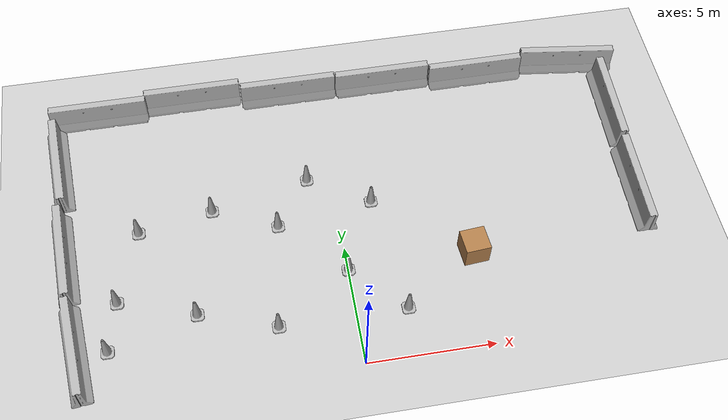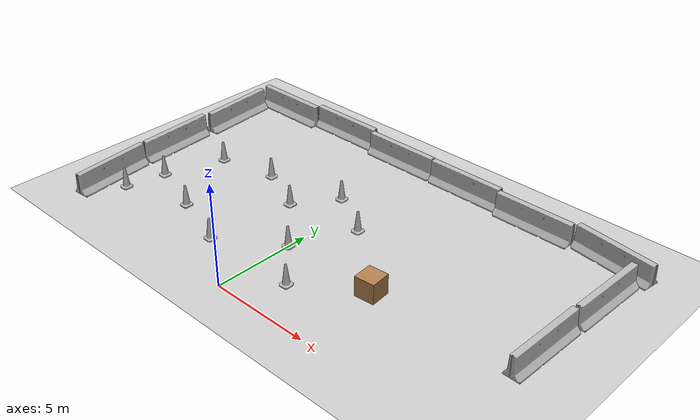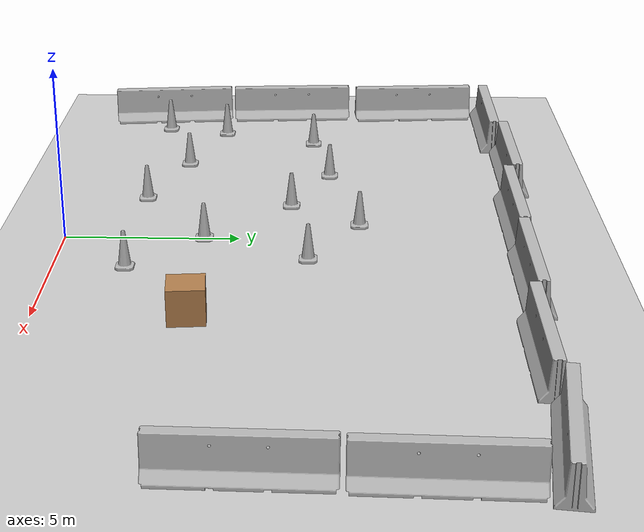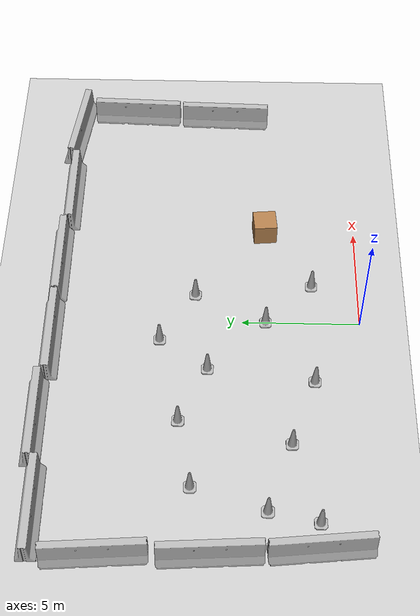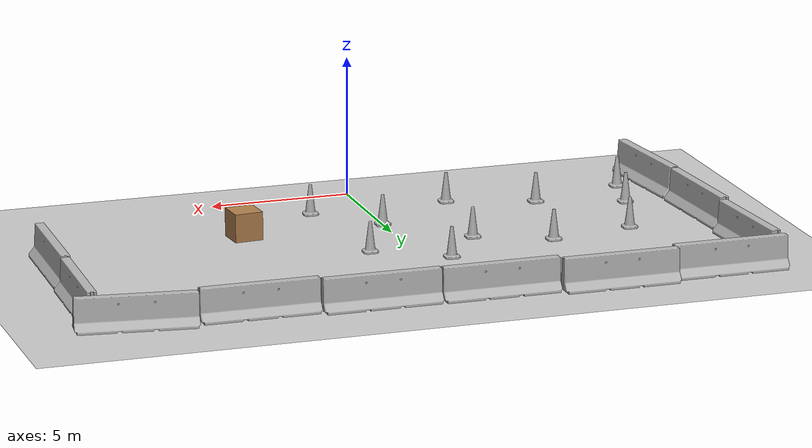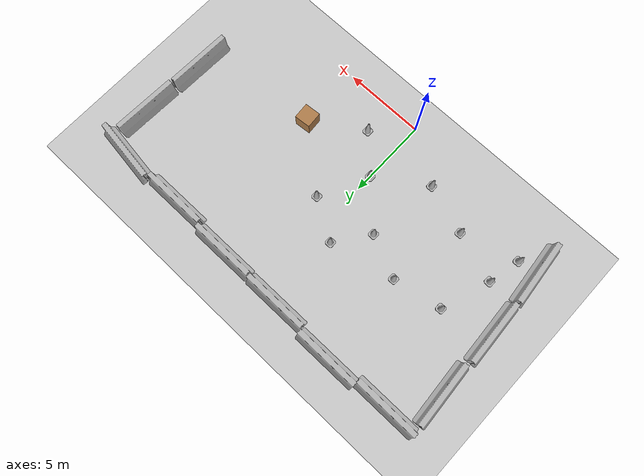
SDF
<sdf version="1.4">
 <world name="default">
  <model name="ground_plane">
   <static>1</static>
   <link name="link">
    <collision name="collision">
     <geometry><plane><normal>0 0 1</normal><size>100 100</size></plane></geometry>
     <surface><friction><ode><mu>100</mu><mu2>50</mu2></ode></friction></surface>
    </collision>
    <visual name="visual">
     <cast_shadows>0</cast_shadows>
     <geometry><plane><normal>0 0 1</normal><size>100 100</size></plane></geometry>
     <material>
      <script><uri>file://media/materials/scripts/gazebo.material</uri><name>Gazebo/Grey</name></script>
     </material>
    </visual>
    <velocity_decay><linear>0</linear><angular>0</angular></velocity_decay>
   </link>
  </model>
  <model name="unit_box_1">
   <pose>5 4 0.5 0 -0 0.083754</pose>
   <link name="link">
    <inertial>
     <mass>1</mass>
     <inertia><ixx>1</ixx><ixy>0</ixy><ixz>0</ixz><iyy>1</iyy><iyz>0</iyz><izz>1</izz></inertia>
    </inertial>
    <collision name="collision"><geometry><box><size>1 1 1</size></box></geometry></collision>
    <visual name="visual">
     <geometry><box><size>1 1 1</size></box></geometry>
     <material>
      <script><uri>file://media/materials/scripts/gazebo.material</uri><name>Gazebo/Wood</name></script>
     </material>
    </visual>
    <velocity_decay><linear>0</linear><angular>0</angular></velocity_decay>
   </link>
   <static>0</static>
  </model>
  <model name="jersey_barrier_5">
   <static>1</static>
   <link name="link">
    <visual name="visual">
     <geometry><mesh><uri>model://jersey_barrier/meshes/jersey_barrier.dae</uri></mesh></geometry>
    </visual>
    <collision name="upright">
     <pose>0 0 0.5715 0 -0 0</pose>
     <geometry><box><size>4.06542 0.3063 1.143</size></box></geometry>
    </collision>
    <collision name="base">
     <pose>0 0 0.032258 0 -0 0</pose>
     <geometry><box><size>4.06542 0.8107 0.064516</size></box></geometry>
    </collision>
    <collision name="base2">
     <pose>0 0 0.1 0 -0 0</pose>
     <geometry><box><size>4.06542 0.65 0.1</size></box></geometry>
    </collision>
    <collision name="base3">
     <pose>0 0 0.2 0 -0 0</pose>
     <geometry><box><size>4.06542 0.5 0.1</size></box></geometry>
    </collision>
    <collision name="left-angle">
     <pose>0 -0.224 0.2401 0.9 -0 0</pose>
     <geometry><box><size>4.06542 0.5 0.064516</size></box></geometry>
    </collision>
    <collision name="right-angle">
     <pose>0 0.224 0.2401 -0.9 0 0</pose>
     <geometry><box><size>4.06542 0.5 0.064516</size></box></geometry>
    </collision>
    <velocity_decay><linear>0</linear><angular>0</angular></velocity_decay>
   </link>
   <pose>-9.25889 13.0001 0 0 -0 0</pose>
  </model>
  <model name="jersey_barrier_6">
   <static>1</static>
   <link name="link">
    <visual name="visual">
     <geometry><mesh><uri>model://jersey_barrier/meshes/jersey_barrier.dae</uri></mesh></geometry>
    </visual>
    <collision name="upright">
     <pose>0 0 0.5715 0 -0 0</pose>
     <geometry><box><size>4.06542 0.3063 1.143</size></box></geometry>
    </collision>
    <collision name="base">
     <pose>0 0 0.032258 0 -0 0</pose>
     <geometry><box><size>4.06542 0.8107 0.064516</size></box></geometry>
    </collision>
    <collision name="base2">
     <pose>0 0 0.1 0 -0 0</pose>
     <geometry><box><size>4.06542 0.65 0.1</size></box></geometry>
    </collision>
    <collision name="base3">
     <pose>0 0 0.2 0 -0 0</pose>
     <geometry><box><size>4.06542 0.5 0.1</size></box></geometry>
    </collision>
    <collision name="left-angle">
     <pose>0 -0.224 0.2401 0.9 -0 0</pose>
     <geometry><box><size>4.06542 0.5 0.064516</size></box></geometry>
    </collision>
    <collision name="right-angle">
     <pose>0 0.224 0.2401 -0.9 0 0</pose>
     <geometry><box><size>4.06542 0.5 0.064516</size></box></geometry>
    </collision>
    <velocity_decay><linear>0</linear><angular>0</angular></velocity_decay>
   </link>
   <pose>-5.24766 13.2823 0 0 -0 0</pose>
  </model>
  <model name="jersey_barrier_7">
   <static>1</static>
   <link name="link">
    <visual name="visual">
     <geometry><mesh><uri>model://jersey_barrier/meshes/jersey_barrier.dae</uri></mesh></geometry>
    </visual>
    <collision name="upright">
     <pose>0 0 0.5715 0 -0 0</pose>
     <geometry><box><size>4.06542 0.3063 1.143</size></box></geometry>
    </collision>
    <collision name="base">
     <pose>0 0 0.032258 0 -0 0</pose>
     <geometry><box><size>4.06542 0.8107 0.064516</size></box></geometry>
    </collision>
    <collision name="base2">
     <pose>0 0 0.1 0 -0 0</pose>
     <geometry><box><size>4.06542 0.65 0.1</size></box></geometry>
    </collision>
    <collision name="base3">
     <pose>0 0 0.2 0 -0 0</pose>
     <geometry><box><size>4.06542 0.5 0.1</size></box></geometry>
    </collision>
    <collision name="left-angle">
     <pose>0 -0.224 0.2401 0.9 -0 0</pose>
     <geometry><box><size>4.06542 0.5 0.064516</size></box></geometry>
    </collision>
    <collision name="right-angle">
     <pose>0 0.224 0.2401 -0.9 0 0</pose>
     <geometry><box><size>4.06542 0.5 0.064516</size></box></geometry>
    </collision>
    <velocity_decay><linear>0</linear><angular>0</angular></velocity_decay>
   </link>
   <pose>-1.1439 12.9956 0 0 -0 0</pose>
  </model>
  <model name="jersey_barrier_8">
   <static>1</static>
   <link name="link">
    <visual name="visual">
     <geometry><mesh><uri>model://jersey_barrier/meshes/jersey_barrier.dae</uri></mesh></geometry>
    </visual>
    <collision name="upright">
     <pose>0 0 0.5715 0 -0 0</pose>
     <geometry><box><size>4.06542 0.3063 1.143</size></box></geometry>
    </collision>
    <collision name="base">
     <pose>0 0 0.032258 0 -0 0</pose>
     <geometry><box><size>4.06542 0.8107 0.064516</size></box></geometry>
    </collision>
    <collision name="base2">
     <pose>0 0 0.1 0 -0 0</pose>
     <geometry><box><size>4.06542 0.65 0.1</size></box></geometry>
    </collision>
    <collision name="base3">
     <pose>0 0 0.2 0 -0 0</pose>
     <geometry><box><size>4.06542 0.5 0.1</size></box></geometry>
    </collision>
    <collision name="left-angle">
     <pose>0 -0.224 0.2401 0.9 -0 0</pose>
     <geometry><box><size>4.06542 0.5 0.064516</size></box></geometry>
    </collision>
    <collision name="right-angle">
     <pose>0 0.224 0.2401 -0.9 0 0</pose>
     <geometry><box><size>4.06542 0.5 0.064516</size></box></geometry>
    </collision>
    <velocity_decay><linear>0</linear><angular>0</angular></velocity_decay>
   </link>
   <pose>2.95316 12.9508 0 0 -0 0</pose>
  </model>
  <model name="jersey_barrier_9">
   <static>1</static>
   <link name="link">
    <visual name="visual">
     <geometry><mesh><uri>model://jersey_barrier/meshes/jersey_barrier.dae</uri></mesh></geometry>
    </visual>
    <collision name="upright">
     <pose>0 0 0.5715 0 -0 0</pose>
     <geometry><box><size>4.06542 0.3063 1.143</size></box></geometry>
    </collision>
    <collision name="base">
     <pose>0 0 0.032258 0 -0 0</pose>
     <geometry><box><size>4.06542 0.8107 0.064516</size></box></geometry>
    </collision>
    <collision name="base2">
     <pose>0 0 0.1 0 -0 0</pose>
     <geometry><box><size>4.06542 0.65 0.1</size></box></geometry>
    </collision>
    <collision name="base3">
     <pose>0 0 0.2 0 -0 0</pose>
     <geometry><box><size>4.06542 0.5 0.1</size></box></geometry>
    </collision>
    <collision name="left-angle">
     <pose>0 -0.224 0.2401 0.9 -0 0</pose>
     <geometry><box><size>4.06542 0.5 0.064516</size></box></geometry>
    </collision>
    <collision name="right-angle">
     <pose>0 0.224 0.2401 -0.9 0 0</pose>
     <geometry><box><size>4.06542 0.5 0.064516</size></box></geometry>
    </collision>
    <velocity_decay><linear>0</linear><angular>0</angular></velocity_decay>
   </link>
   <pose>7.0396 12.7183 0 0 -0 0</pose>
  </model>
  <model name="jersey_barrier_10">
   <static>1</static>
   <link name="link">
    <visual name="visual">
     <geometry><mesh><uri>model://jersey_barrier/meshes/jersey_barrier.dae</uri></mesh></geometry>
    </visual>
    <collision name="upright">
     <pose>0 0 0.5715 0 -0 0</pose>
     <geometry><box><size>4.06542 0.3063 1.143</size></box></geometry>
    </collision>
    <collision name="base">
     <pose>0 0 0.032258 0 -0 0</pose>
     <geometry><box><size>4.06542 0.8107 0.064516</size></box></geometry>
    </collision>
    <collision name="base2">
     <pose>0 0 0.1 0 -0 0</pose>
     <geometry><box><size>4.06542 0.65 0.1</size></box></geometry>
    </collision>
    <collision name="base3">
     <pose>0 0 0.2 0 -0 0</pose>
     <geometry><box><size>4.06542 0.5 0.1</size></box></geometry>
    </collision>
    <collision name="left-angle">
     <pose>0 -0.224 0.2401 0.9 -0 0</pose>
     <geometry><box><size>4.06542 0.5 0.064516</size></box></geometry>
    </collision>
    <collision name="right-angle">
     <pose>0 0.224 0.2401 -0.9 0 0</pose>
     <geometry><box><size>4.06542 0.5 0.064516</size></box></geometry>
    </collision>
    <velocity_decay><linear>0</linear><angular>0</angular></velocity_decay>
   </link>
   <pose>11.167 12.7238 0 0 0 -0.129577</pose>
  </model>
  <model name="jersey_barrier_11">
   <static>1</static>
   <link name="link">
    <visual name="visual">
     <geometry><mesh><uri>model://jersey_barrier/meshes/jersey_barrier.dae</uri></mesh></geometry>
    </visual>
    <collision name="upright">
     <pose>0 0 0.5715 0 -0 0</pose>
     <geometry><box><size>4.06542 0.3063 1.143</size></box></geometry>
    </collision>
    <collision name="base">
     <pose>0 0 0.032258 0 -0 0</pose>
     <geometry><box><size>4.06542 0.8107 0.064516</size></box></geometry>
    </collision>
    <collision name="base2">
     <pose>0 0 0.1 0 -0 0</pose>
     <geometry><box><size>4.06542 0.65 0.1</size></box></geometry>
    </collision>
    <collision name="base3">
     <pose>0 0 0.2 0 -0 0</pose>
     <geometry><box><size>4.06542 0.5 0.1</size></box></geometry>
    </collision>
    <collision name="left-angle">
     <pose>0 -0.224 0.2401 0.9 -0 0</pose>
     <geometry><box><size>4.06542 0.5 0.064516</size></box></geometry>
    </collision>
    <collision name="right-angle">
     <pose>0 0.224 0.2401 -0.9 0 0</pose>
     <geometry><box><size>4.06542 0.5 0.064516</size></box></geometry>
    </collision>
    <velocity_decay><linear>0</linear><angular>0</angular></velocity_decay>
   </link>
   <pose>12.194 5.8304 0 0 -0 1.54369</pose>
  </model>
  <model name="jersey_barrier_15">
   <static>1</static>
   <link name="link">
    <visual name="visual">
     <geometry><mesh><uri>model://jersey_barrier/meshes/jersey_barrier.dae</uri></mesh></geometry>
    </visual>
    <collision name="upright">
     <pose>0 0 0.5715 0 -0 0</pose>
     <geometry><box><size>4.06542 0.3063 1.143</size></box></geometry>
    </collision>
    <collision name="base">
     <pose>0 0 0.032258 0 -0 0</pose>
     <geometry><box><size>4.06542 0.8107 0.064516</size></box></geometry>
    </collision>
    <collision name="base2">
     <pose>0 0 0.1 0 -0 0</pose>
     <geometry><box><size>4.06542 0.65 0.1</size></box></geometry>
    </collision>
    <collision name="base3">
     <pose>0 0 0.2 0 -0 0</pose>
     <geometry><box><size>4.06542 0.5 0.1</size></box></geometry>
    </collision>
    <collision name="left-angle">
     <pose>0 -0.224 0.2401 0.9 -0 0</pose>
     <geometry><box><size>4.06542 0.5 0.064516</size></box></geometry>
    </collision>
    <collision name="right-angle">
     <pose>0 0.224 0.2401 -0.9 0 0</pose>
     <geometry><box><size>4.06542 0.5 0.064516</size></box></geometry>
    </collision>
    <velocity_decay><linear>0</linear><angular>0</angular></velocity_decay>
   </link>
   <pose>-10.907 6.17584 0 0 -0 1.63254</pose>
  </model>
  <model name="jersey_barrier_16">
   <static>1</static>
   <link name="link">
    <visual name="visual">
     <geometry><mesh><uri>model://jersey_barrier/meshes/jersey_barrier.dae</uri></mesh></geometry>
    </visual>
    <collision name="upright">
     <pose>0 0 0.5715 0 -0 0</pose>
     <geometry><box><size>4.06542 0.3063 1.143</size></box></geometry>
    </collision>
    <collision name="base">
     <pose>0 0 0.032258 0 -0 0</pose>
     <geometry><box><size>4.06542 0.8107 0.064516</size></box></geometry>
    </collision>
    <collision name="base2">
     <pose>0 0 0.1 0 -0 0</pose>
     <geometry><box><size>4.06542 0.65 0.1</size></box></geometry>
    </collision>
    <collision name="base3">
     <pose>0 0 0.2 0 -0 0</pose>
     <geometry><box><size>4.06542 0.5 0.1</size></box></geometry>
    </collision>
    <collision name="left-angle">
     <pose>0 -0.224 0.2401 0.9 -0 0</pose>
     <geometry><box><size>4.06542 0.5 0.064516</size></box></geometry>
    </collision>
    <collision name="right-angle">
     <pose>0 0.224 0.2401 -0.9 0 0</pose>
     <geometry><box><size>4.06542 0.5 0.064516</size></box></geometry>
    </collision>
    <velocity_decay><linear>0</linear><angular>0</angular></velocity_decay>
   </link>
   <pose>-10.6126 2.01572 0 0 -0 1.67324</pose>
  </model>
  <model name="jersey_barrier_20">
   <static>1</static>
   <link name="link">
    <visual name="visual">
     <geometry><mesh><uri>model://jersey_barrier/meshes/jersey_barrier.dae</uri></mesh></geometry>
    </visual>
    <collision name="upright">
     <pose>0 0 0.5715 0 -0 0</pose>
     <geometry><box><size>4.06542 0.3063 1.143</size></box></geometry>
    </collision>
    <collision name="base">
     <pose>0 0 0.032258 0 -0 0</pose>
     <geometry><box><size>4.06542 0.8107 0.064516</size></box></geometry>
    </collision>
    <collision name="base2">
     <pose>0 0 0.1 0 -0 0</pose>
     <geometry><box><size>4.06542 0.65 0.1</size></box></geometry>
    </collision>
    <collision name="base3">
     <pose>0 0 0.2 0 -0 0</pose>
     <geometry><box><size>4.06542 0.5 0.1</size></box></geometry>
    </collision>
    <collision name="left-angle">
     <pose>0 -0.224 0.2401 0.9 -0 0</pose>
     <geometry><box><size>4.06542 0.5 0.064516</size></box></geometry>
    </collision>
    <collision name="right-angle">
     <pose>0 0.224 0.2401 -0.9 0 0</pose>
     <geometry><box><size>4.06542 0.5 0.064516</size></box></geometry>
    </collision>
    <velocity_decay><linear>0</linear><angular>0</angular></velocity_decay>
   </link>
   <pose>12.3728 10.0187 0 0 -0 1.53674</pose>
  </model>
  <model name="jersey_barrier_21">
   <static>1</static>
   <link name="link">
    <visual name="visual">
     <geometry><mesh><uri>model://jersey_barrier/meshes/jersey_barrier.dae</uri></mesh></geometry>
    </visual>
    <collision name="upright">
     <pose>0 0 0.5715 0 -0 0</pose>
     <geometry><box><size>4.06542 0.3063 1.143</size></box></geometry>
    </collision>
    <collision name="base">
     <pose>0 0 0.032258 0 -0 0</pose>
     <geometry><box><size>4.06542 0.8107 0.064516</size></box></geometry>
    </collision>
    <collision name="base2">
     <pose>0 0 0.1 0 -0 0</pose>
     <geometry><box><size>4.06542 0.65 0.1</size></box></geometry>
    </collision>
    <collision name="base3">
     <pose>0 0 0.2 0 -0 0</pose>
     <geometry><box><size>4.06542 0.5 0.1</size></box></geometry>
    </collision>
    <collision name="left-angle">
     <pose>0 -0.224 0.2401 0.9 -0 0</pose>
     <geometry><box><size>4.06542 0.5 0.064516</size></box></geometry>
    </collision>
    <collision name="right-angle">
     <pose>0 0.224 0.2401 -0.9 0 0</pose>
     <geometry><box><size>4.06542 0.5 0.064516</size></box></geometry>
    </collision>
    <velocity_decay><linear>0</linear><angular>0</angular></velocity_decay>
   </link>
   <pose>-10.9991 10.488 0 0 -0 1.64124</pose>
  </model>
  <model name="Construction Cone_4">
   <link name="link">
    <collision name="collision">
     <geometry>
      <mesh><scale>10 10 10</scale><uri>model://construction_cone/meshes/construction_cone.dae</uri></mesh>
     </geometry>
    </collision>
    <visual name="visual">
     <geometry>
      <mesh><scale>10 10 10</scale><uri>model://construction_cone/meshes/construction_cone.dae</uri></mesh>
     </geometry>
    </visual>
    <velocity_decay><linear>0</linear><angular>0</angular></velocity_decay>
    <inertial>
     <inertia><ixx>1</ixx><ixy>0</ixy><ixz>0</ixz><iyy>1</iyy><iyz>0</iyz><izz>1</izz></inertia>
     <mass>1</mass>
    </inertial>
   </link>
   <pose>0 4 -0 0 -1e-06 0</pose>
   <static>0</static>
  </model>
  <model name="Construction Cone_7">
   <link name="link">
    <collision name="collision">
     <geometry>
      <mesh><scale>10 10 10</scale><uri>model://construction_cone/meshes/construction_cone.dae</uri></mesh>
     </geometry>
    </collision>
    <visual name="visual">
     <geometry>
      <mesh><scale>10 10 10</scale><uri>model://construction_cone/meshes/construction_cone.dae</uri></mesh>
     </geometry>
    </visual>
    <velocity_decay><linear>0</linear><angular>0</angular></velocity_decay>
    <inertial>
     <inertia><ixx>1</ixx><ixy>0</ixy><ixz>0</ixz><iyy>1</iyy><iyz>0</iyz><izz>1</izz></inertia>
     <mass>1</mass>
    </inertial>
   </link>
   <pose>-1 8.45202 -0 0 -1e-06 0</pose>
   <static>0</static>
  </model>
  <model name="Construction Cone_8">
   <link name="link">
    <collision name="collision">
     <geometry>
      <mesh><scale>10 10 10</scale><uri>model://construction_cone/meshes/construction_cone.dae</uri></mesh>
     </geometry>
    </collision>
    <visual name="visual">
     <geometry>
      <mesh><scale>10 10 10</scale><uri>model://construction_cone/meshes/construction_cone.dae</uri></mesh>
     </geometry>
    </visual>
    <velocity_decay><linear>0</linear><angular>0</angular></velocity_decay>
    <inertial>
     <inertia><ixx>1</ixx><ixy>0</ixy><ixz>0</ixz><iyy>1</iyy><iyz>0</iyz><izz>1</izz></inertia>
     <mass>1</mass>
    </inertial>
   </link>
   <pose>-9.44612 2 -1e-05 0 -1e-06 0</pose>
   <static>0</static>
  </model>
  <model name="Construction Cone_10">
   <link name="link">
    <collision name="collision">
     <geometry>
      <mesh><scale>10 10 10</scale><uri>model://construction_cone/meshes/construction_cone.dae</uri></mesh>
     </geometry>
    </collision>
    <visual name="visual">
     <geometry>
      <mesh><scale>10 10 10</scale><uri>model://construction_cone/meshes/construction_cone.dae</uri></mesh>
     </geometry>
    </visual>
    <velocity_decay><linear>0</linear><angular>0</angular></velocity_decay>
    <inertial>
     <inertia><ixx>1</ixx><ixy>0</ixy><ixz>0</ixz><iyy>1</iyy><iyz>0</iyz><izz>1</izz></inertia>
     <mass>1</mass>
    </inertial>
   </link>
   <pose>-2.45691 6.42269 0 0 -0 0</pose>
   <static>0</static>
  </model>
  <model name="Construction Cone_13">
   <link name="link">
    <collision name="collision">
     <geometry>
      <mesh><scale>10 10 10</scale><uri>model://construction_cone/meshes/construction_cone.dae</uri></mesh>
     </geometry>
    </collision>
    <visual name="visual">
     <geometry>
      <mesh><scale>10 10 10</scale><uri>model://construction_cone/meshes/construction_cone.dae</uri></mesh>
     </geometry>
    </visual>
    <velocity_decay><linear>0</linear><angular>0</angular></velocity_decay>
    <inertial>
     <inertia><ixx>1</ixx><ixy>0</ixy><ixz>0</ixz><iyy>1</iyy><iyz>0</iyz><izz>1</izz></inertia>
     <mass>1</mass>
    </inertial>
   </link>
   <pose>-6 3 -9e-06 2e-06 -1e-06 -8.07794e-28</pose>
   <static>0</static>
  </model>
  <model name="Construction Cone_15">
   <link name="link">
    <collision name="collision">
     <geometry>
      <mesh><scale>10 10 10</scale><uri>model://construction_cone/meshes/construction_cone.dae</uri></mesh>
     </geometry>
    </collision>
    <visual name="visual">
     <geometry>
      <mesh><scale>10 10 10</scale><uri>model://construction_cone/meshes/construction_cone.dae</uri></mesh>
     </geometry>
    </visual>
    <velocity_decay><linear>0</linear><angular>0</angular></velocity_decay>
    <inertial>
     <inertia><ixx>1</ixx><ixy>0</ixy><ixz>0</ixz><iyy>1</iyy><iyz>0</iyz><izz>1</izz></inertia>
     <mass>1</mass>
    </inertial>
   </link>
   <pose>-9 4 -1e-05 0 1e-06 0</pose>
   <static>0</static>
  </model>
  <model name="Construction Cone_16">
   <link name="link">
    <collision name="collision">
     <geometry>
      <mesh><scale>10 10 10</scale><uri>model://construction_cone/meshes/construction_cone.dae</uri></mesh>
     </geometry>
    </collision>
    <visual name="visual">
     <geometry>
      <mesh><scale>10 10 10</scale><uri>model://construction_cone/meshes/construction_cone.dae</uri></mesh>
     </geometry>
    </visual>
    <velocity_decay><linear>0</linear><angular>0</angular></velocity_decay>
    <inertial>
     <inertia><ixx>1</ixx><ixy>0</ixy><ixz>0</ixz><iyy>1</iyy><iyz>0</iyz><izz>1</izz></inertia>
     <mass>1</mass>
    </inertial>
   </link>
   <pose>-3 2 0 0 -0 0</pose>
   <static>0</static>
  </model>
  <model name="Construction Cone_17">
   <link name="link">
    <collision name="collision">
     <geometry>
      <mesh><scale>10 10 10</scale><uri>model://construction_cone/meshes/construction_cone.dae</uri></mesh>
     </geometry>
    </collision>
    <visual name="visual">
     <geometry>
      <mesh><scale>10 10 10</scale><uri>model://construction_cone/meshes/construction_cone.dae</uri></mesh>
     </geometry>
    </visual>
    <velocity_decay><linear>0</linear><angular>0</angular></velocity_decay>
    <inertial>
     <inertia><ixx>1</ixx><ixy>0</ixy><ixz>0</ixz><iyy>1</iyy><iyz>0</iyz><izz>1</izz></inertia>
     <mass>1</mass>
    </inertial>
   </link>
   <pose>2 2 0 1e-06 1e-06 0</pose>
   <static>0</static>
  </model>
  <model name="Construction Cone_18">
   <link name="link">
    <collision name="collision">
     <geometry>
      <mesh><scale>10 10 10</scale><uri>model://construction_cone/meshes/construction_cone.dae</uri></mesh>
     </geometry>
    </collision>
    <visual name="visual">
     <geometry>
      <mesh><scale>10 10 10</scale><uri>model://construction_cone/meshes/construction_cone.dae</uri></mesh>
     </geometry>
    </visual>
    <velocity_decay><linear>0</linear><angular>0</angular></velocity_decay>
    <inertial>
     <inertia><ixx>1</ixx><ixy>0</ixy><ixz>0</ixz><iyy>1</iyy><iyz>0</iyz><izz>1</izz></inertia>
     <mass>1</mass>
    </inertial>
   </link>
   <pose>-5 7.55858 -0 0 1e-06 0</pose>
   <static>0</static>
  </model>
  <model name="Construction Cone_19">
   <link name="link">
    <collision name="collision">
     <geometry>
      <mesh><scale>10 10 10</scale><uri>model://construction_cone/meshes/construction_cone.dae</uri></mesh>
     </geometry>
    </collision>
    <visual name="visual">
     <geometry>
      <mesh><scale>10 10 10</scale><uri>model://construction_cone/meshes/construction_cone.dae</uri></mesh>
     </geometry>
    </visual>
    <velocity_decay><linear>0</linear><angular>0</angular></velocity_decay>
    <inertial>
     <inertia><ixx>1</ixx><ixy>0</ixy><ixz>0</ixz><iyy>1</iyy><iyz>0</iyz><izz>1</izz></inertia>
     <mass>1</mass>
    </inertial>
   </link>
   <pose>-8 7 -9e-06 0 -0 0</pose>
   <static>0</static>
  </model>
  <model name="Construction Cone_20">
   <link name="link">
    <collision name="collision">
     <geometry>
      <mesh><scale>10 10 10</scale><uri>model://construction_cone/meshes/construction_cone.dae</uri></mesh>
     </geometry>
    </collision>
    <visual name="visual">
     <geometry>
      <mesh><scale>10 10 10</scale><uri>model://construction_cone/meshes/construction_cone.dae</uri></mesh>
     </geometry>
    </visual>
    <velocity_decay><linear>0</linear><angular>0</angular></velocity_decay>
    <inertial>
     <inertia><ixx>1</ixx><ixy>0</ixy><ixz>0</ixz><iyy>1</iyy><iyz>0</iyz><izz>1</izz></inertia>
     <mass>1</mass>
    </inertial>
   </link>
   <pose>1.42672 7 0 0 1e-06 0</pose>
   <static>0</static>
  </model>
 </world>
</sdf>
